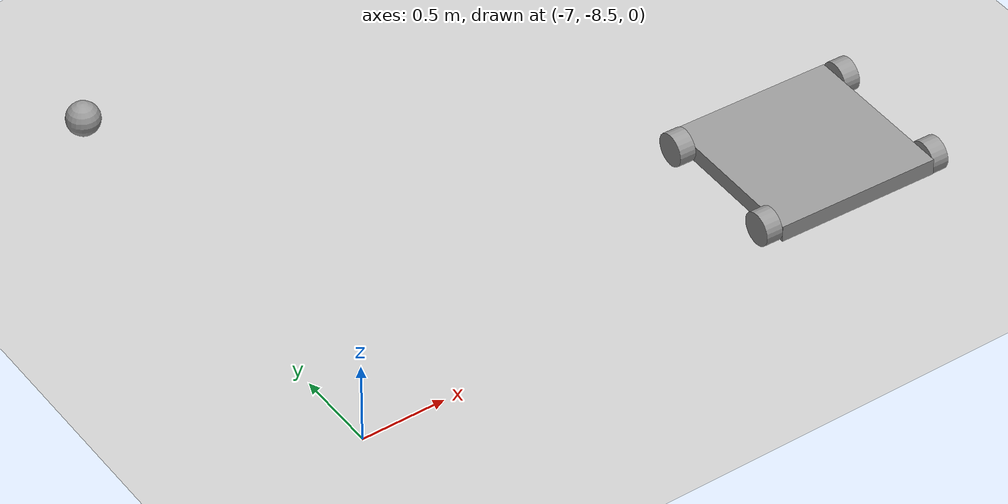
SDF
<sdf version="1.6">
 <world name="default">
  <model name="ground_plane">
   <static>1</static>
   <link name="link">
    <collision name="collision">
     <geometry><plane><normal>0 0 1</normal><size>100 100</size></plane></geometry>
     <surface>
      <contact><collide_bitmask>65535</collide_bitmask></contact>
      <friction><ode><mu>100</mu><mu2>50</mu2></ode></friction>
     </surface>
    </collision>
    <visual name="visual">
     <cast_shadows>0</cast_shadows>
     <geometry><plane><normal>0 0 1</normal><size>100 100</size></plane></geometry>
     <material>
      <script><uri>file://media/materials/scripts/gazebo.material</uri><name>Gazebo/Grey</name></script>
     </material>
    </visual>
   </link>
  </model>
  <model name="FourWheel">
   <link name="link_1">
    <inertial>
     <mass>1</mass>
     <inertia>
      <ixx>0.166667</ixx>
      <ixy>0</ixy>
      <ixz>0</ixz>
      <iyy>0.166667</iyy>
      <iyz>0</iyz>
      <izz>0.166667</izz>
     </inertia>
    </inertial>
    <visual name="visual">
     <geometry><box><size>1 1 0.1</size></box></geometry>
     <material>
      <lighting>1</lighting>
      <script><uri>file://media/materials/scripts/gazebo.material</uri><name>Gazebo/Grey</name></script>
      <shader type="pixel"><normal_map>__default__</normal_map></shader>
      <ambient>0.3 0.3 0.3 1</ambient>
      <diffuse>0.7 0.7 0.7 1</diffuse>
      <specular>0.01 0.01 0.01 1</specular>
      <emissive>0 0 0 1</emissive>
     </material>
    </visual>
    <collision name="collision">
     <geometry><box><size>1 1 0.1</size></box></geometry>
     <surface>
      <friction>
       <ode><mu>1</mu><mu2>1</mu2><fdir1>0 0 0</fdir1><slip1>0</slip1><slip2>0</slip2></ode>
       <torsional>
        <coefficient>1</coefficient>
        <patch_radius>0</patch_radius>
        <surface_radius>0</surface_radius>
        <use_patch_radius>1</use_patch_radius>
        <ode><slip>0</slip></ode>
       </torsional>
      </friction>
      <bounce><restitution_coefficient>0</restitution_coefficient><threshold>1e+06</threshold></bounce>
      <contact>
       <collide_without_contact>0</collide_without_contact>
       <collide_without_contact_bitmask>1</collide_without_contact_bitmask>
       <collide_bitmask>1</collide_bitmask>
       <ode>
        <soft_cfm>0</soft_cfm>
        <soft_erp>0.2</soft_erp>
        <kp>1e+13</kp>
        <kd>1</kd>
        <max_vel>0.01</max_vel>
        <min_depth>0</min_depth>
       </ode>
       <bullet>
        <split_impulse>1</split_impulse>
        <split_impulse_penetration_threshold>-0.01</split_impulse_penetration_threshold>
        <soft_cfm>0</soft_cfm>
        <soft_erp>0.2</soft_erp>
        <kp>1e+13</kp>
        <kd>1</kd>
       </bullet>
      </contact>
     </surface>
    </collision>
   </link>
   <link name="link_2">
    <inertial>
     <mass>1</mass>
     <inertia><ixx>0.145833</ixx><ixy>0</ixy><ixz>0</ixz><iyy>0.145833</iyy><iyz>0</iyz><izz>0.125</izz></inertia>
     <pose>0 0 0 1.57 1.57 1.57</pose>
    </inertial>
    <pose>0.550159 -0.39996 -0.006984 0 -0 0</pose>
    <visual name="visual">
     <pose>0 0 0 1.57 -0 1.57</pose>
     <geometry><cylinder><radius>0.1</radius><length>0.1</length></cylinder></geometry>
     <material>
      <lighting>1</lighting>
      <script><uri>file://media/materials/scripts/gazebo.material</uri><name>Gazebo/Grey</name></script>
      <shader type="pixel"><normal_map>__default__</normal_map></shader>
      <ambient>0.3 0.3 0.3 1</ambient>
      <diffuse>0.7 0.7 0.7 1</diffuse>
      <specular>0.01 0.01 0.01 1</specular>
      <emissive>0 0 0 1</emissive>
     </material>
    </visual>
    <collision name="collision">
     <pose>0 0 0 1.57 -0 1.57</pose>
     <geometry><cylinder><radius>0.1</radius><length>0.1</length></cylinder></geometry>
     <surface>
      <friction>
       <ode><mu>1</mu><mu2>1</mu2><fdir1>0 0 0</fdir1><slip1>0</slip1><slip2>0</slip2></ode>
       <torsional>
        <coefficient>1</coefficient>
        <patch_radius>0</patch_radius>
        <surface_radius>0</surface_radius>
        <use_patch_radius>1</use_patch_radius>
        <ode><slip>0</slip></ode>
       </torsional>
      </friction>
      <bounce><restitution_coefficient>0</restitution_coefficient><threshold>1e+06</threshold></bounce>
      <contact>
       <collide_without_contact>0</collide_without_contact>
       <collide_without_contact_bitmask>1</collide_without_contact_bitmask>
       <collide_bitmask>1</collide_bitmask>
       <ode>
        <soft_cfm>0</soft_cfm>
        <soft_erp>0.2</soft_erp>
        <kp>1e+13</kp>
        <kd>1</kd>
        <max_vel>0.01</max_vel>
        <min_depth>0</min_depth>
       </ode>
       <bullet>
        <split_impulse>1</split_impulse>
        <split_impulse_penetration_threshold>-0.01</split_impulse_penetration_threshold>
        <soft_cfm>0</soft_cfm>
        <soft_erp>0.2</soft_erp>
        <kp>1e+13</kp>
        <kd>1</kd>
       </bullet>
      </contact>
     </surface>
    </collision>
   </link>
   <link name="link_2_clone">
    <inertial>
     <mass>1</mass>
     <inertia><ixx>0.145833</ixx><ixy>0</ixy><ixz>0</ixz><iyy>0.145833</iyy><iyz>0</iyz><izz>0.125</izz></inertia>
    </inertial>
    <pose>-0.550159 0.39996 0.012996 0 -0 0</pose>
    <visual name="visual">
     <pose>0 0 0 1.57 -0 1.57</pose>
     <geometry><cylinder><radius>0.1</radius><length>0.1</length></cylinder></geometry>
     <material>
      <lighting>1</lighting>
      <script><uri>file://media/materials/scripts/gazebo.material</uri><name>Gazebo/Grey</name></script>
      <shader type="pixel"><normal_map>__default__</normal_map></shader>
      <ambient>0.3 0.3 0.3 1</ambient>
      <diffuse>0.7 0.7 0.7 1</diffuse>
      <specular>0.01 0.01 0.01 1</specular>
      <emissive>0 0 0 1</emissive>
     </material>
    </visual>
    <collision name="collision">
     <pose>0 0 0 1.57 -0 1.57</pose>
     <geometry><cylinder><radius>0.1</radius><length>0.1</length></cylinder></geometry>
     <surface>
      <friction>
       <ode><mu>1</mu><mu2>1</mu2><fdir1>0 0 0</fdir1><slip1>0</slip1><slip2>0</slip2></ode>
       <torsional>
        <coefficient>1</coefficient>
        <patch_radius>0</patch_radius>
        <surface_radius>0</surface_radius>
        <use_patch_radius>1</use_patch_radius>
        <ode><slip>0</slip></ode>
       </torsional>
      </friction>
      <bounce><restitution_coefficient>0</restitution_coefficient><threshold>1e+06</threshold></bounce>
      <contact>
       <collide_without_contact>0</collide_without_contact>
       <collide_without_contact_bitmask>1</collide_without_contact_bitmask>
       <collide_bitmask>1</collide_bitmask>
       <ode>
        <soft_cfm>0</soft_cfm>
        <soft_erp>0.2</soft_erp>
        <kp>1e+13</kp>
        <kd>1</kd>
        <max_vel>0.01</max_vel>
        <min_depth>0</min_depth>
       </ode>
       <bullet>
        <split_impulse>1</split_impulse>
        <split_impulse_penetration_threshold>-0.01</split_impulse_penetration_threshold>
        <soft_cfm>0</soft_cfm>
        <soft_erp>0.2</soft_erp>
        <kp>1e+13</kp>
        <kd>1</kd>
       </bullet>
      </contact>
     </surface>
    </collision>
   </link>
   <link name="link_2_clone_0">
    <inertial>
     <mass>1</mass>
     <inertia><ixx>0.145833</ixx><ixy>0</ixy><ixz>0</ixz><iyy>0.145833</iyy><iyz>0</iyz><izz>0.125</izz></inertia>
    </inertial>
    <pose>0.550159 0.39996 0.012996 0 -0 0</pose>
    <visual name="visual">
     <pose>0 0 0 1.57 -0 1.57</pose>
     <geometry><cylinder><radius>0.1</radius><length>0.1</length></cylinder></geometry>
     <material>
      <lighting>1</lighting>
      <script><uri>file://media/materials/scripts/gazebo.material</uri><name>Gazebo/Grey</name></script>
      <shader type="pixel"><normal_map>__default__</normal_map></shader>
      <ambient>0.3 0.3 0.3 1</ambient>
      <diffuse>0.7 0.7 0.7 1</diffuse>
      <specular>0.01 0.01 0.01 1</specular>
      <emissive>0 0 0 1</emissive>
     </material>
    </visual>
    <collision name="collision">
     <pose>0 0 0 1.57 -0 1.57</pose>
     <geometry><cylinder><radius>0.1</radius><length>0.1</length></cylinder></geometry>
     <surface>
      <friction>
       <ode><mu>1</mu><mu2>1</mu2><fdir1>0 0 0</fdir1><slip1>0</slip1><slip2>0</slip2></ode>
       <torsional>
        <coefficient>1</coefficient>
        <patch_radius>0</patch_radius>
        <surface_radius>0</surface_radius>
        <use_patch_radius>1</use_patch_radius>
        <ode><slip>0</slip></ode>
       </torsional>
      </friction>
      <bounce><restitution_coefficient>0</restitution_coefficient><threshold>1e+06</threshold></bounce>
      <contact>
       <collide_without_contact>0</collide_without_contact>
       <collide_without_contact_bitmask>1</collide_without_contact_bitmask>
       <collide_bitmask>1</collide_bitmask>
       <ode>
        <soft_cfm>0</soft_cfm>
        <soft_erp>0.2</soft_erp>
        <kp>1e+13</kp>
        <kd>1</kd>
        <max_vel>0.01</max_vel>
        <min_depth>0</min_depth>
       </ode>
       <bullet>
        <split_impulse>1</split_impulse>
        <split_impulse_penetration_threshold>-0.01</split_impulse_penetration_threshold>
        <soft_cfm>0</soft_cfm>
        <soft_erp>0.2</soft_erp>
        <kp>1e+13</kp>
        <kd>1</kd>
       </bullet>
      </contact>
     </surface>
    </collision>
   </link>
   <link name="link_2_clone_1">
    <inertial>
     <mass>1</mass>
     <inertia><ixx>0.145833</ixx><ixy>0</ixy><ixz>0</ixz><iyy>0.145833</iyy><iyz>0</iyz><izz>0.125</izz></inertia>
     <pose>0 0 0 1.57 -0 1.57</pose>
    </inertial>
    <pose>-0.550159 -0.39996 0.012996 0 -0 0</pose>
    <visual name="visual">
     <pose>0 0 0 1.57 -0 1.57</pose>
     <geometry><cylinder><radius>0.1</radius><length>0.1</length></cylinder></geometry>
     <material>
      <lighting>1</lighting>
      <script><uri>file://media/materials/scripts/gazebo.material</uri><name>Gazebo/Grey</name></script>
      <shader type="pixel"><normal_map>__default__</normal_map></shader>
      <ambient>0.3 0.3 0.3 1</ambient>
      <diffuse>0.7 0.7 0.7 1</diffuse>
      <specular>0.01 0.01 0.01 1</specular>
      <emissive>0 0 0 1</emissive>
     </material>
    </visual>
    <collision name="collision">
     <pose>0 0 0 1.57 -0 1.57</pose>
     <geometry><cylinder><radius>0.1</radius><length>0.1</length></cylinder></geometry>
     <surface>
      <friction>
       <ode><mu>1</mu><mu2>1</mu2><fdir1>0 0 0</fdir1><slip1>0</slip1><slip2>0</slip2></ode>
       <torsional>
        <coefficient>1</coefficient>
        <patch_radius>0</patch_radius>
        <surface_radius>0</surface_radius>
        <use_patch_radius>1</use_patch_radius>
        <ode><slip>0</slip></ode>
       </torsional>
      </friction>
      <bounce><restitution_coefficient>0</restitution_coefficient><threshold>1e+06</threshold></bounce>
      <contact>
       <collide_without_contact>0</collide_without_contact>
       <collide_without_contact_bitmask>1</collide_without_contact_bitmask>
       <collide_bitmask>1</collide_bitmask>
       <ode>
        <soft_cfm>0</soft_cfm>
        <soft_erp>0.2</soft_erp>
        <kp>1e+13</kp>
        <kd>1</kd>
        <max_vel>0.01</max_vel>
        <min_depth>0</min_depth>
       </ode>
       <bullet>
        <split_impulse>1</split_impulse>
        <split_impulse_penetration_threshold>-0.01</split_impulse_penetration_threshold>
        <soft_cfm>0</soft_cfm>
        <soft_erp>0.2</soft_erp>
        <kp>1e+13</kp>
        <kd>1</kd>
       </bullet>
      </contact>
     </surface>
    </collision>
   </link>
   <joint name="link_1_JOINT_2" type="revolute">
    <parent>link_1</parent>
    <child>link_2_clone_0</child>
    <axis>
     <xyz>1 0 0</xyz>
     <use_parent_model_frame>0</use_parent_model_frame>
     <limit>
      <lower>-1.79769e+308</lower>
      <upper>1.79769e+308</upper>
      <effort>-1</effort>
      <velocity>-1</velocity>
     </limit>
     <dynamics>
      <spring_reference>0</spring_reference>
      <spring_stiffness>0</spring_stiffness>
      <damping>0</damping>
      <friction>0</friction>
     </dynamics>
    </axis>
    <physics>
     <ode><limit><cfm>0</cfm><erp>0.2</erp></limit><suspension><cfm>0</cfm><erp>0.2</erp></suspension></ode>
    </physics>
   </joint>
   <joint name="link_1_JOINT_3" type="revolute">
    <parent>link_1</parent>
    <child>link_2</child>
    <axis>
     <xyz>1 0 0</xyz>
     <use_parent_model_frame>0</use_parent_model_frame>
     <limit>
      <lower>-1.79769e+308</lower>
      <upper>1.79769e+308</upper>
      <effort>-1</effort>
      <velocity>-1</velocity>
     </limit>
     <dynamics>
      <spring_reference>0</spring_reference>
      <spring_stiffness>0</spring_stiffness>
      <damping>0</damping>
      <friction>0</friction>
     </dynamics>
    </axis>
    <physics>
     <ode><limit><cfm>0</cfm><erp>0.2</erp></limit><suspension><cfm>0</cfm><erp>0.2</erp></suspension></ode>
    </physics>
   </joint>
   <joint name="link_1_JOINT_4" type="revolute">
    <parent>link_1</parent>
    <child>link_2_clone_1</child>
    <axis>
     <xyz>1 0 0</xyz>
     <use_parent_model_frame>0</use_parent_model_frame>
     <limit>
      <lower>-1.79769e+308</lower>
      <upper>1.79769e+308</upper>
      <effort>-1</effort>
      <velocity>-1</velocity>
     </limit>
     <dynamics>
      <spring_reference>0</spring_reference>
      <spring_stiffness>0</spring_stiffness>
      <damping>0</damping>
      <friction>0</friction>
     </dynamics>
    </axis>
    <physics>
     <ode><limit><cfm>0</cfm><erp>0.2</erp></limit><suspension><cfm>0</cfm><erp>0.2</erp></suspension></ode>
    </physics>
   </joint>
   <joint name="link_1_JOINT_5" type="revolute">
    <parent>link_1</parent>
    <child>link_2_clone</child>
    <axis>
     <xyz>1 0 0</xyz>
     <use_parent_model_frame>0</use_parent_model_frame>
     <limit>
      <lower>-1.79769e+308</lower>
      <upper>1.79769e+308</upper>
      <effort>-1</effort>
      <velocity>-1</velocity>
     </limit>
     <dynamics>
      <spring_reference>0</spring_reference>
      <spring_stiffness>0</spring_stiffness>
      <damping>0</damping>
      <friction>0</friction>
     </dynamics>
    </axis>
    <physics>
     <ode><limit><cfm>0</cfm><erp>0.2</erp></limit><suspension><cfm>0</cfm><erp>0.2</erp></suspension></ode>
    </physics>
   </joint>
   <static>0</static>
   <pose>-3.85918 -8.08339 0.097001 -0.024198 -0.000557 -0.027972</pose>
  </model>
  <model name="my_ball">
   <link name="link_0">
    <inertial>
     <mass>1</mass>
     <inertia><ixx>0.1</ixx><ixy>0</ixy><ixz>0</ixz><iyy>0.1</iyy><iyz>0</iyz><izz>0.1</izz></inertia>
    </inertial>
    <visual name="visual">
     <geometry><sphere><radius>0.1</radius></sphere></geometry>
     <material>
      <lighting>1</lighting>
      <script><uri>file://media/materials/scripts/gazebo.material</uri><name>Gazebo/Grey</name></script>
      <shader type="vertex"><normal_map>__default__</normal_map></shader>
      <ambient>0.3 0.3 0.3 1</ambient>
      <diffuse>0.7 0.7 0.7 1</diffuse>
      <specular>0.01 0.01 0.01 1</specular>
      <emissive>1 1 1 1</emissive>
     </material>
    </visual>
    <collision name="collision">
     <geometry><sphere><radius>0.1</radius></sphere></geometry>
     <surface>
      <friction>
       <ode><mu>1</mu><mu2>1</mu2><fdir1>0 0 0</fdir1><slip1>0</slip1><slip2>0</slip2></ode>
       <torsional>
        <coefficient>1</coefficient>
        <patch_radius>0</patch_radius>
        <surface_radius>0</surface_radius>
        <use_patch_radius>1</use_patch_radius>
        <ode><slip>0</slip></ode>
       </torsional>
      </friction>
      <bounce><restitution_coefficient>0</restitution_coefficient><threshold>1e+06</threshold></bounce>
      <contact>
       <collide_without_contact>0</collide_without_contact>
       <collide_without_contact_bitmask>1</collide_without_contact_bitmask>
       <collide_bitmask>1</collide_bitmask>
       <ode>
        <soft_cfm>0</soft_cfm>
        <soft_erp>0.2</soft_erp>
        <kp>1e+13</kp>
        <kd>1</kd>
        <max_vel>0.01</max_vel>
        <min_depth>0</min_depth>
       </ode>
       <bullet>
        <split_impulse>1</split_impulse>
        <split_impulse_penetration_threshold>-0.01</split_impulse_penetration_threshold>
        <soft_cfm>0</soft_cfm>
        <soft_erp>0.2</soft_erp>
        <kp>1e+13</kp>
        <kd>1</kd>
       </bullet>
      </contact>
     </surface>
    </collision>
   </link>
   <static>0</static>
   <pose>-6.91099 -5.62145 0.1 0 -0 0</pose>
  </model>
 </world>
</sdf>
